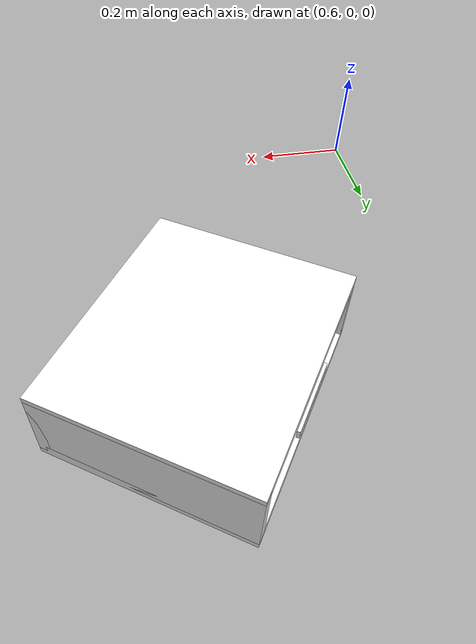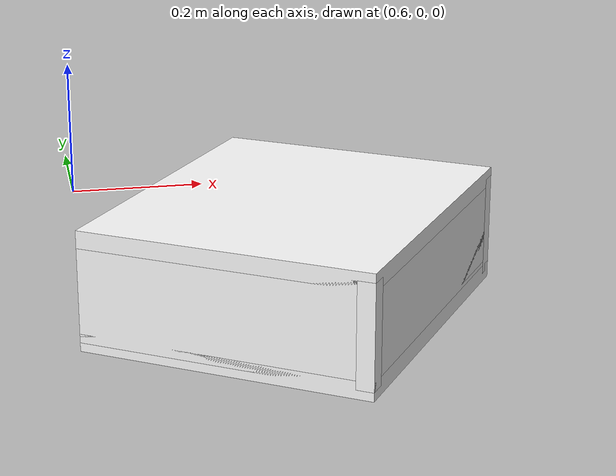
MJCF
<mujoco model="drawer">
        <compiler angle="radian" eulerseq='zxy' />
        <option gravity = "0 0 0" />
        <option>
            <flag contact = "disable"/>
        </option>
        <statistic	extent="1.0" center="0.0 0.0 0.0"/>
        <visual>
            <map fogstart="3" fogend="5" force="0.1" znear=" 0.100000 " zfar=" 12.000000 "/>
        </visual>
        <size njmax="500" nconmax="100" />
        <actuator>
            <velocity joint="drawerJ" name="viva_revolution" kv='10'></velocity>
        </actuator>
        <asset>
            <texture builtin="flat" name="objtex" height="32" width="32" rgb1="1 1 1" type="cube"></texture>
            <texture builtin="flat" name="handletex" height="32" width="32" rgb1="1 1 1" type="cube"></texture>
            <material name="geomObj" shininess="0.03" specular="0.75" texture="objtex"></material>
            <material name="geomHandle" shininess="0.03" specular="0.75" texture="handletex"></material>
        </asset>
        <worldbody>
            <body name="cabinet_bottom" pos= " 1.034305 0.429683 -0.383886 "  quat= " 0.290658 0.000000 0.000000 0.956827" >
                <inertial pos="0 0 0" mass="1" diaginertia="1 1 1" />
                <geom size= " 0.282521 0.330440 0.016761 "  type="box" material="geomObj" name="b"/>
                <body name="cabinet_left" pos= " 0.000000 -0.313679 0.098488 " >
                    <inertial pos="0 0 0" mass="1" diaginertia="1 1 1" />
                    <geom size= " 0.282521 0.016761 0.098488 "  type="box" material="geomObj" name="c" />
                </body>
                <body name="cabinet_right" pos= " 0.000000 0.313679 0.098488 " >
                    <inertial pos="0 0 0" mass="1" diaginertia="1 1 1" />
                    <geom size= " 0.282521 0.016761 0.098488 "  type="box" material="geomObj" name="d" />
                </body>
                <body name="cabinet_top" pos= " 0.000000 0.000000 0.196976 " >
                    <inertial pos="0 0 0" mass="1" diaginertia="1 1 1" />
                    <geom size= " 0.282521 0.330440 0.016761 "  type="box" material="geomObj" name="e"/>
                </body>
                <body name="cabinet_back" pos= " -0.265759 0.000000 0.098488 "  >
                    <inertial pos="0 0 0" mass="1" diaginertia="1 1 1" />
                    <geom size= " 0.016761 0.330440 0.098488 "  type="box" material="geomObj" name="f" />
                </body>
                <body name="drawer" pos= " 0.000000 0.000000 0.008381 "  >
                    <geom size= " 0.265759 0.313679 0.016761 "  type="box" material="geomObj" name="ddddfadfadsfac" />
                    <joint name="drawerJ" pos="0 0 0" axis="1 0 0" type="slide" limited="true" range= "0  0.4237813353538513 "  />
                    <inertial pos="0 0 0" mass="1" diaginertia="1 1 1" />
                    <body name="drawer_left" pos= " 0.000000 -0.296917 0.098488 " >
                        <inertial pos="0 0 0" mass="1" diaginertia="1 1 1" />
                        <geom size= " 0.265759 0.016761 0.081727 "  type="box" material="geomObj" name="ddc" />
                    </body>
                    <body name="drawer_right" pos= " 0.000000 0.296917 0.098488 " >
                        <inertial pos="0 0 0" mass="1" diaginertia="1 1 1" />
                        <geom size= " 0.265759 0.016761 0.081727 "  type="box" material="geomObj" name="dddd" />
                    </body>
                    <body name="drawer_front" pos= " 0.248998 0.000000 0.098488 " >
                        <inertial pos="0 0 0" mass="1" diaginertia="1 1 1" />
                        <geom size= " 0.016761 0.313679 0.081727 "  type="box" material="geomObj" name="eeeee"/>
                    </body>
                    <body name="drawer_back" pos= " -0.265759 0.000000 0.098488 "  >
                        <inertial pos="0 0 0" mass="1" diaginertia="1 1 1" />
                        <geom size= " 0.016761 0.313679 0.081727 "  type="box" material="geomObj" name="fffff" />
                    </body>
                    <body name="knob" pos= " 0.282521 0.000000 0.098488 " >
                        <inertial pos="0 0 0" mass="0.1" diaginertia="0.1 0.1 0.1" />
                        <geom size= " 0.004062 0.104874 0.013052 "  pos="0 0 0" type="box" material="geomHandle" name="handle"/>
                    </body>
                </body>
            </body>
            <body name="external_camera_body_0" pos="0.0 0 0.00">
                <camera euler="-1.57 1.57 0.0" fovy=" 54.280851 " name="external_camera_0" pos="0.0 0 0"></camera>
                <inertial pos= " 0.00 0.0 0.000000 " mass="1" diaginertia="1 1 1" />
                <joint name="cam_j" pos="0.0 0 0" axis = "1 0 0" type="free" />
            </body>
        </worldbody>
    </mujoco>
